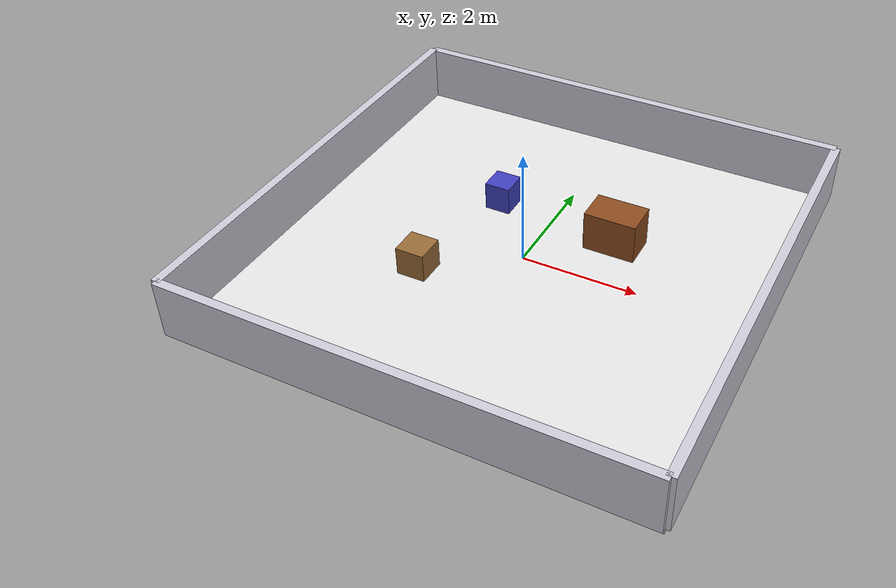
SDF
<?xml version="1.0" ?>
<sdf version="1.8">
  <world name="vacuum_cleaning_room">

    <physics type="ode">
      <max_step_size>0.001</max_step_size>
      <real_time_factor>1.0</real_time_factor>
    </physics>

    <plugin filename="gz-sim-physics-system" name="gz::sim::systems::Physics"/>
    <plugin filename="gz-sim-user-commands-system" name="gz::sim::systems::UserCommands"/>
    <plugin filename="gz-sim-scene-broadcaster-system" name="gz::sim::systems::SceneBroadcaster"/>
    <plugin filename="gz-sim-sensors-system" name="gz::sim::systems::Sensors">
      <render_engine>ogre2</render_engine>
    </plugin>

    <light type="directional" name="sun">
      <cast_shadows>true</cast_shadows>
      <pose>0 0 10 0 0 0</pose>
      <diffuse>0.8 0.8 0.8 1</diffuse>
      <specular>0.2 0.2 0.2 1</specular>
      <direction>-0.5 0.1 -0.9</direction>
    </light>

    <model name="floor">
      <static>true</static>
      <link name="link">
        <collision name="collision">
          <geometry><box><size>8 8 0.1</size></box></geometry>
        </collision>
        <visual name="visual">
          <geometry><box><size>8 8 0.1</size></box></geometry>
          <material>
            <ambient>0.9 0.9 0.9 1</ambient>
            <diffuse>0.9 0.9 0.9 1</diffuse>
          </material>
        </visual>
        <pose>0 0 -0.05 0 0 0</pose>
      </link>
    </model>

    <model name="wall_north">
      <static>true</static>
      <pose>0 4 0.5 0 0 0</pose>
      <link name="link">
        <collision name="collision">
          <geometry><box><size>8 0.15 1.0</size></box></geometry>
        </collision>
        <visual name="visual">
          <geometry><box><size>8 0.15 1.0</size></box></geometry>
          <material>
            <ambient>0.8 0.8 0.85 1</ambient>
            <diffuse>0.8 0.8 0.85 1</diffuse>
          </material>
        </visual>
      </link>
    </model>

    <model name="wall_south">
      <static>true</static>
      <pose>0 -4 0.5 0 0 0</pose>
      <link name="link">
        <collision name="collision">
          <geometry><box><size>8 0.15 1.0</size></box></geometry>
        </collision>
        <visual name="visual">
          <geometry><box><size>8 0.15 1.0</size></box></geometry>
          <material>
            <ambient>0.8 0.8 0.85 1</ambient>
            <diffuse>0.8 0.8 0.85 1</diffuse>
          </material>
        </visual>
      </link>
    </model>

    <model name="wall_east">
      <static>true</static>
      <pose>4 0 0.5 0 0 0</pose>
      <link name="link">
        <collision name="collision">
          <geometry><box><size>0.15 8 1.0</size></box></geometry>
        </collision>
        <visual name="visual">
          <geometry><box><size>0.15 8 1.0</size></box></geometry>
          <material>
            <ambient>0.8 0.8 0.85 1</ambient>
            <diffuse>0.8 0.8 0.85 1</diffuse>
          </material>
        </visual>
      </link>
    </model>

    <model name="wall_west">
      <static>true</static>
      <pose>-4 0 0.5 0 0 0</pose>
      <link name="link">
        <collision name="collision">
          <geometry><box><size>0.15 8 1.0</size></box></geometry>
        </collision>
        <visual name="visual">
          <geometry><box><size>0.15 8 1.0</size></box></geometry>
          <material>
            <ambient>0.8 0.8 0.85 1</ambient>
            <diffuse>0.8 0.8 0.85 1</diffuse>
          </material>
        </visual>
      </link>
    </model>

    <model name="table">
      <static>true</static>
      <pose>1.2 1.0 0.35 0 0 0</pose>
      <link name="link">
        <collision name="collision">
          <geometry><box><size>0.9 0.6 0.7</size></box></geometry>
        </collision>
        <visual name="visual">
          <geometry><box><size>0.9 0.6 0.7</size></box></geometry>
          <material>
            <ambient>0.55 0.30 0.12 1</ambient>
            <diffuse>0.55 0.30 0.12 1</diffuse>
          </material>
        </visual>
      </link>
    </model>

    <model name="chair">
      <static>true</static>
      <pose>-1.0 1.2 0.25 0 0 0</pose>
      <link name="link">
        <collision name="collision">
          <geometry><box><size>0.45 0.45 0.5</size></box></geometry>
        </collision>
        <visual name="visual">
          <geometry><box><size>0.45 0.45 0.5</size></box></geometry>
          <material>
            <ambient>0.25 0.25 0.75 1</ambient>
            <diffuse>0.25 0.25 0.75 1</diffuse>
          </material>
        </visual>
      </link>
    </model>

    <model name="bedside_table">
      <static>true</static>
      <pose>-1.4 -1.0 0.25 0 0 0</pose>
      <link name="link">
        <collision name="collision">
          <geometry><box><size>0.5 0.5 0.5</size></box></geometry>
        </collision>
        <visual name="visual">
          <geometry><box><size>0.5 0.5 0.5</size></box></geometry>
          <material>
            <ambient>0.6 0.42 0.22 1</ambient>
            <diffuse>0.6 0.42 0.22 1</diffuse>
          </material>
        </visual>
      </link>
    </model>

  </world>
</sdf>
